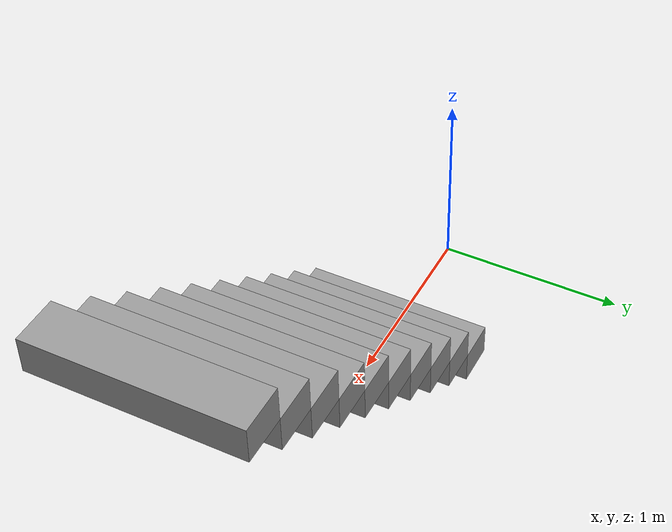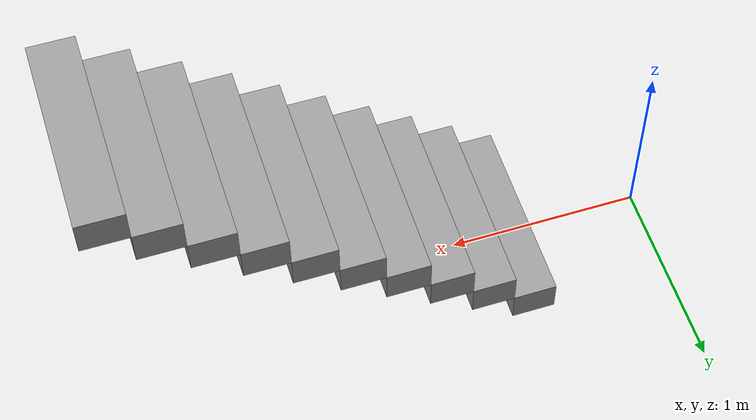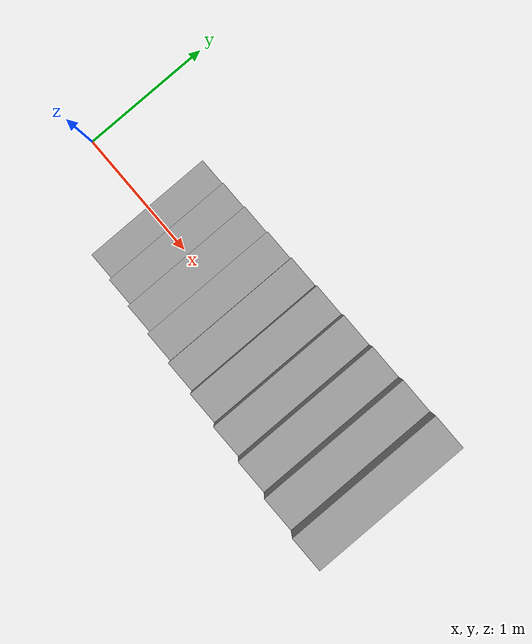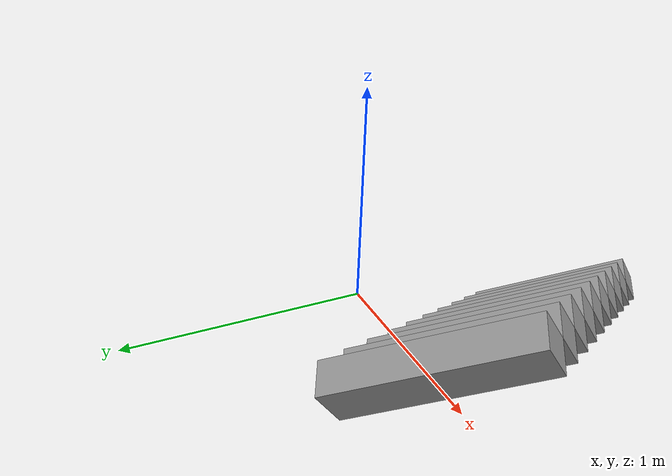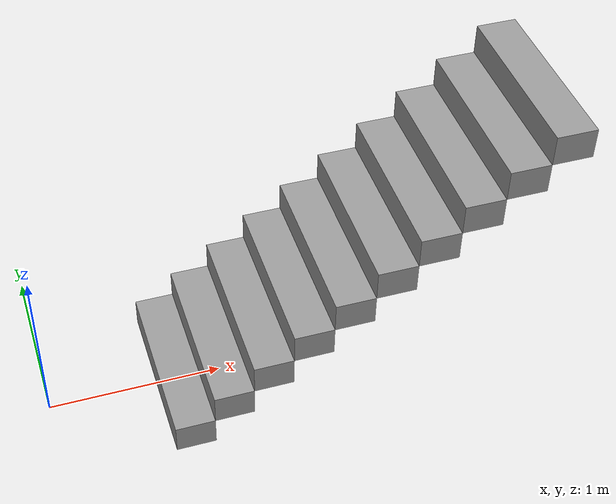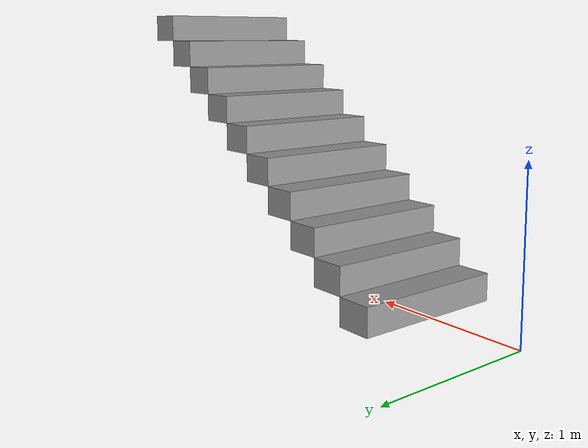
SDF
<?xml version='1.0'?>
<sdf version='1.7'>
  <model name='real_stairs'>
    <pose>1.4375 0 0 0 -0 0</pose>
    <link name='Stairs_1'>
      <visual name='Stairs_1_Visual_0'>
        <pose>-0.7 -0 0.0875 0 -0 1.5708</pose>
        <geometry>
          <box>
            <size>1 0.225 0.175</size>
          </box>
        </geometry>
        <material>
          <script>
            <uri>file://media/materials/scripts/gazebo.material</uri>
            <name>Gazebo/Grey</name>
          </script>
          <ambient>1 1 1 1</ambient>
        </material>
        <meta>
          <layer>0</layer>
        </meta>
      </visual>
      <collision name='Stairs_1_Collision_0'>
        <geometry>
          <box>
            <size>1 0.225 0.175</size>
          </box>
        </geometry>
        <pose>-0.7 -0 0.0875 0 -0 1.5708</pose>
      </collision>
      <visual name='Stairs_1_Visual_1'>
        <pose>-0.475 -0 0.2625 0 -0 1.5708</pose>
        <geometry>
          <box>
            <size>1 0.225 0.175</size>
          </box>
        </geometry>
        <material>
          <script>
            <uri>file://media/materials/scripts/gazebo.material</uri>
            <name>Gazebo/Grey</name>
          </script>
          <ambient>1 1 1 1</ambient>
        </material>
        <meta>
          <layer>0</layer>
        </meta>
      </visual>
      <collision name='Stairs_1_Collision_1'>
        <geometry>
          <box>
            <size>1 0.225 0.175</size>
          </box>
        </geometry>
        <pose>-0.475 -0 0.2625 0 -0 1.5708</pose>
      </collision>
      <visual name='Stairs_1_Visual_2'>
        <pose>-0.25 -0 0.4375 0 -0 1.5708</pose>
        <geometry>
          <box>
            <size>1 0.225 0.175</size>
          </box>
        </geometry>
        <material>
          <script>
            <uri>file://media/materials/scripts/gazebo.material</uri>
            <name>Gazebo/Grey</name>
          </script>
          <ambient>1 1 1 1</ambient>
        </material>
        <meta>
          <layer>0</layer>
        </meta>
      </visual>
      <collision name='Stairs_1_Collision_2'>
        <geometry>
          <box>
            <size>1 0.225 0.175</size>
          </box>
        </geometry>
        <pose>-0.25 -0 0.4375 0 -0 1.5708</pose>
      </collision>
      <visual name='Stairs_1_Visual_3'>
        <pose>-0.025 -0 0.6125 0 -0 1.5708</pose>
        <geometry>
          <box>
            <size>1 0.225 0.175</size>
          </box>
        </geometry>
        <material>
          <script>
            <uri>file://media/materials/scripts/gazebo.material</uri>
            <name>Gazebo/Grey</name>
          </script>
          <ambient>1 1 1 1</ambient>
        </material>
        <meta>
          <layer>0</layer>
        </meta>
      </visual>
      <collision name='Stairs_1_Collision_3'>
        <geometry>
          <box>
            <size>1 0.225 0.175</size>
          </box>
        </geometry>
        <pose>-0.025 -0 0.6125 0 -0 1.5708</pose>
      </collision>
      <visual name='Stairs_1_Visual_4'>
        <pose>0.2 -0 0.7875 0 -0 1.5708</pose>
        <geometry>
          <box>
            <size>1 0.225 0.175</size>
          </box>
        </geometry>
        <material>
          <script>
            <uri>file://media/materials/scripts/gazebo.material</uri>
            <name>Gazebo/Grey</name>
          </script>
          <ambient>1 1 1 1</ambient>
        </material>
        <meta>
          <layer>0</layer>
        </meta>
      </visual>
      <collision name='Stairs_1_Collision_4'>
        <geometry>
          <box>
            <size>1 0.225 0.175</size>
          </box>
        </geometry>
        <pose>0.2 -0 0.7875 0 -0 1.5708</pose>
      </collision>
      <visual name='Stairs_1_Visual_5'>
        <pose>0.425 0 0.9625 0 -0 1.5708</pose>
        <geometry>
          <box>
            <size>1 0.225 0.175</size>
          </box>
        </geometry>
        <material>
          <script>
            <uri>file://media/materials/scripts/gazebo.material</uri>
            <name>Gazebo/Grey</name>
          </script>
          <ambient>1 1 1 1</ambient>
        </material>
        <meta>
          <layer>0</layer>
        </meta>
      </visual>
      <collision name='Stairs_1_Collision_5'>
        <geometry>
          <box>
            <size>1 0.225 0.175</size>
          </box>
        </geometry>
        <pose>0.425 0 0.9625 0 -0 1.5708</pose>
      </collision>
      <visual name='Stairs_1_Visual_6'>
        <pose>0.65 0 1.1375 0 -0 1.5708</pose>
        <geometry>
          <box>
            <size>1 0.225 0.175</size>
          </box>
        </geometry>
        <material>
          <script>
            <uri>file://media/materials/scripts/gazebo.material</uri>
            <name>Gazebo/Grey</name>
          </script>
          <ambient>1 1 1 1</ambient>
        </material>
        <meta>
          <layer>0</layer>
        </meta>
      </visual>
      <collision name='Stairs_1_Collision_6'>
        <geometry>
          <box>
            <size>1 0.225 0.175</size>
          </box>
        </geometry>
        <pose>0.65 0 1.1375 0 -0 1.5708</pose>
      </collision>
      <visual name='Stairs_1_Visual_7'>
        <pose>0.875 0 1.3125 0 -0 1.5708</pose>
        <geometry>
          <box>
            <size>1 0.225 0.175</size>
          </box>
        </geometry>
        <material>
          <script>
            <uri>file://media/materials/scripts/gazebo.material</uri>
            <name>Gazebo/Grey</name>
          </script>
          <ambient>1 1 1 1</ambient>
        </material>
        <meta>
          <layer>0</layer>
        </meta>
      </visual>
      <collision name='Stairs_1_Collision_7'>
        <geometry>
          <box>
            <size>1 0.225 0.175</size>
          </box>
        </geometry>
        <pose>0.875 0 1.3125 0 -0 1.5708</pose>
      </collision>
      <visual name='Stairs_1_Visual_8'>
        <pose>1.1 0 1.4875 0 -0 1.5708</pose>
        <geometry>
          <box>
            <size>1 0.225 0.175</size>
          </box>
        </geometry>
        <material>
          <script>
            <uri>file://media/materials/scripts/gazebo.material</uri>
            <name>Gazebo/Grey</name>
          </script>
          <ambient>1 1 1 1</ambient>
        </material>
        <meta>
          <layer>0</layer>
        </meta>
      </visual>
      <collision name='Stairs_1_Collision_8'>
        <geometry>
          <box>
            <size>1 0.225 0.175</size>
          </box>
        </geometry>
        <pose>1.1 0 1.4875 0 -0 1.5708</pose>
      </collision>
      <visual name='Stairs_1_Visual_9'>
        <pose>1.325 0 1.6625 0 -0 1.5708</pose>
        <geometry>
          <box>
            <size>1 0.225 0.175</size>
          </box>
        </geometry>
        <material>
          <script>
            <uri>file://media/materials/scripts/gazebo.material</uri>
            <name>Gazebo/Grey</name>
          </script>
          <ambient>1 1 1 1</ambient>
        </material>
        <meta>
          <layer>0</layer>
        </meta>
      </visual>
      <collision name='Stairs_1_Collision_9'>
        <geometry>
          <box>
            <size>1 0.225 0.175</size>
          </box>
        </geometry>
        <pose>1.325 0 1.6625 0 -0 1.5708</pose>
      </collision>
    </link>
    <static>1</static>
  </model>
</sdf>
